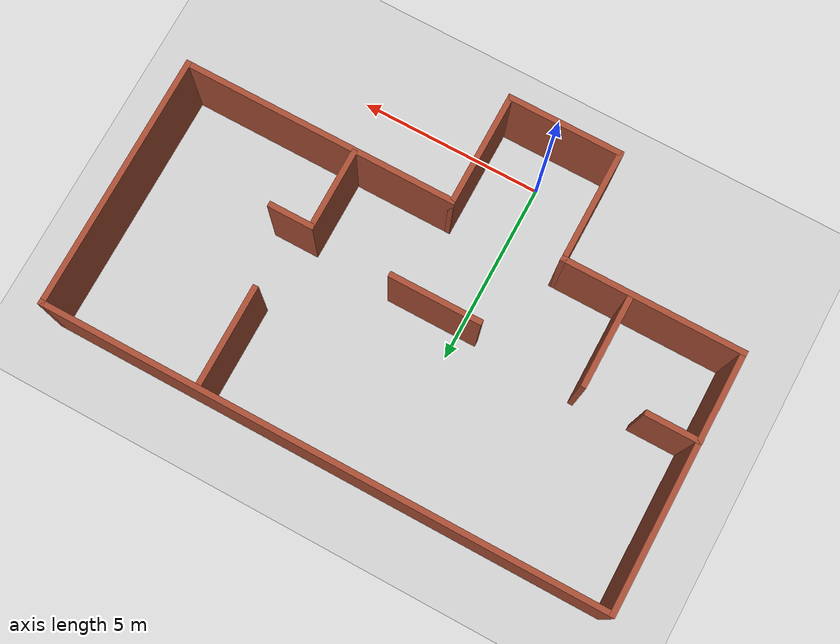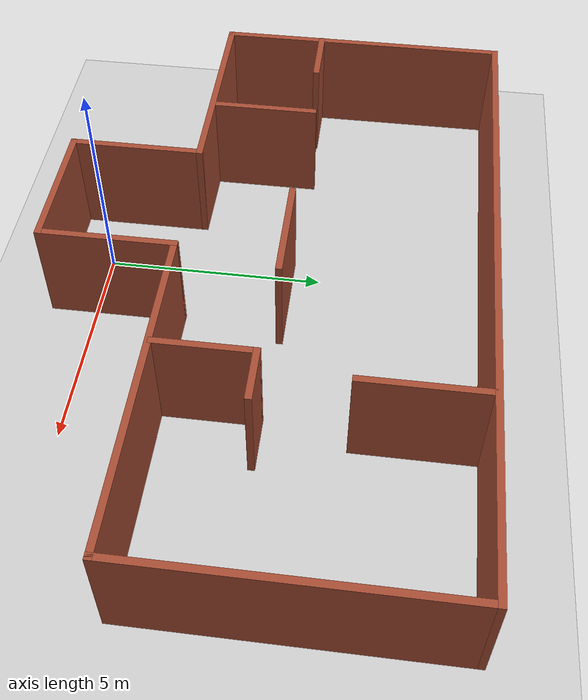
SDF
<sdf version="1.7">
 <world name="default">
  <plugin name="gazebo_ros_init" filename="libgazebo_ros_init.so">
   <ros><argument>--ros-args</argument></ros>
  </plugin>
  <plugin name="gazebo_ros_factory" filename="libgazebo_ros_factory.so"/>
  <light name="sun" type="directional">
   <pose>0 0 10 0 -0 0</pose>
   <diffuse>0.8 0.8 0.8 1</diffuse>
   <specular>0.2 0.2 0.2 1</specular>
   <attenuation>
    <range>1000</range>
    <constant>0.9</constant>
    <linear>0.01</linear>
    <quadratic>0.001</quadratic>
   </attenuation>
   <direction>-0.5 0.1 -0.9</direction>
   <spot><inner_angle>0</inner_angle><outer_angle>0</outer_angle><falloff>0</falloff></spot>
  </light>
  <model name="ground_plane">
   <static>1</static>
   <link name="link">
    <collision name="collision">
     <geometry><plane><normal>0 0 1</normal><size>100 100</size></plane></geometry>
     <surface>
      <contact><collide_bitmask>65535</collide_bitmask></contact>
      <friction><ode><mu>100</mu><mu2>50</mu2></ode></friction>
     </surface>
    </collision>
    <visual name="visual">
     <cast_shadows>0</cast_shadows>
     <geometry><plane><normal>0 0 1</normal><size>100 100</size></plane></geometry>
     <material>
      <script><uri>file://media/materials/scripts/gazebo.material</uri><name>Gazebo/Grey</name></script>
     </material>
    </visual>
   </link>
  </model>
  <gravity>0 0 -9.8</gravity>
  <magnetic_field>6e-06 2.3e-05 -4.2e-05</magnetic_field>
  <atmosphere type="adiabatic"/>
  <physics type="ode">
   <max_step_size>0.001</max_step_size>
   <real_time_factor>1</real_time_factor>
   <real_time_update_rate>1000</real_time_update_rate>
  </physics>
  <scene><ambient>0.4 0.4 0.4 1</ambient><background>0.7 0.7 0.7 1</background><shadows>1</shadows></scene>
  <audio><device>default</device></audio>
  <spherical_coordinates>
   <surface_model>EARTH_WGS84</surface_model>
   <latitude_deg>0</latitude_deg>
   <longitude_deg>0</longitude_deg>
   <elevation>0</elevation>
   <heading_deg>0</heading_deg>
  </spherical_coordinates>
  <model name="test_model">
   <pose>1.29701 3.925 0 0 -0 0</pose>
   <link name="Wall_0">
    <collision name="Wall_0_Collision">
     <geometry><box><size>3.15 0.15 2.5</size></box></geometry>
     <pose>0 0 1.25 0 -0 0</pose>
    </collision>
    <visual name="Wall_0_Visual">
     <pose>0 0 1.25 0 -0 0</pose>
     <geometry><box><size>3.15 0.15 2.5</size></box></geometry>
     <material>
      <script><uri>file://media/materials/scripts/gazebo.material</uri><name>Gazebo/Bricks</name></script>
      <ambient>1 1 1 1</ambient>
     </material>
     <meta><layer>0</layer></meta>
    </visual>
    <pose>-2.79701 -3.425 0 0 -0 1.5708</pose>
   </link>
   <link name="Wall_10">
    <collision name="Wall_10_Collision">
     <geometry><box><size>7 0.15 2.5</size></box></geometry>
     <pose>0 0 1.25 0 -0 0</pose>
    </collision>
    <visual name="Wall_10_Visual">
     <pose>0 0 1.25 0 -0 0</pose>
     <geometry><box><size>7 0.15 2.5</size></box></geometry>
     <material>
      <script><uri>file://media/materials/scripts/gazebo.material</uri><name>Gazebo/Bricks</name></script>
      <ambient>1 1 1 1</ambient>
     </material>
     <meta><layer>0</layer></meta>
    </visual>
    <pose>-7.54701 1.5 0 0 -0 -1.5708</pose>
   </link>
   <link name="Wall_11">
    <collision name="Wall_11_Collision">
     <geometry><box><size>4.9 0.15 2.5</size></box></geometry>
     <pose>0 0 1.25 0 -0 0</pose>
    </collision>
    <visual name="Wall_11_Visual">
     <pose>0 0 1.25 0 -0 0</pose>
     <geometry><box><size>4.9 0.15 2.5</size></box></geometry>
     <material>
      <script><uri>file://media/materials/scripts/gazebo.material</uri><name>Gazebo/Bricks</name></script>
      <ambient>1 1 1 1</ambient>
     </material>
     <meta><layer>0</layer></meta>
    </visual>
    <pose>-5.17201 -1.925 0 0 -0 0</pose>
   </link>
   <link name="Wall_13">
    <collision name="Wall_13_Collision">
     <geometry><box><size>0 0 0</size></box></geometry>
     <pose>0 0 1.25 0 -0 0</pose>
    </collision>
    <visual name="Wall_13_Visual">
     <pose>0 0 1.25 0 -0 0</pose>
     <geometry><box><size>0 0 0</size></box></geometry>
     <material>
      <script><uri>file://media/materials/scripts/gazebo.material</uri><name>Gazebo/Bricks</name></script>
      <ambient>1 1 1 1</ambient>
     </material>
     <meta><layer>0</layer></meta>
    </visual>
    <pose>-3.75299 3.03498 0 0 -0 0</pose>
   </link>
   <link name="Wall_15">
    <collision name="Wall_15_Collision">
     <geometry><box><size>2.75 0.15 2.5</size></box></geometry>
     <pose>0 0 1.25 0 -0 0</pose>
    </collision>
    <visual name="Wall_15_Visual">
     <pose>0 0 1.25 0 -0 0</pose>
     <geometry><box><size>2.75 0.15 2.5</size></box></geometry>
     <material>
      <script><uri>file://media/materials/scripts/gazebo.material</uri><name>Gazebo/Bricks</name></script>
      <ambient>1 1 1 1</ambient>
     </material>
     <meta><layer>0</layer></meta>
    </visual>
    <pose>3.31033 3.51885 0 0 -0 -1.5708</pose>
   </link>
   <link name="Wall_16">
    <collision name="Wall_16_Collision">
     <geometry><box><size>0 0 0</size></box></geometry>
     <pose>0 0 1.25 0 -0 0</pose>
    </collision>
    <visual name="Wall_16_Visual">
     <pose>0 0 1.25 0 -0 0</pose>
     <geometry><box><size>0 0 0</size></box></geometry>
     <material>
      <script><uri>file://media/materials/scripts/gazebo.material</uri><name>Gazebo/Bricks</name></script>
      <ambient>1 1 1 1</ambient>
     </material>
     <meta><layer>0</layer></meta>
    </visual>
    <pose>4.73532 2.21885 0 0 -0 0</pose>
   </link>
   <link name="Wall_18">
    <collision name="Wall_18_Collision">
     <geometry><box><size>2.25 0.15 2.5</size></box></geometry>
     <pose>0 0 1.25 0 -0 0</pose>
    </collision>
    <visual name="Wall_18_Visual">
     <pose>0 0 1.25 0 -0 0</pose>
     <geometry><box><size>2.25 0.15 2.5</size></box></geometry>
     <material>
      <script><uri>file://media/materials/scripts/gazebo.material</uri><name>Gazebo/Bricks</name></script>
      <ambient>1 1 1 1</ambient>
     </material>
     <meta><layer>0</layer></meta>
    </visual>
    <pose>2.87579 -0.809227 0 0 -0 1.5708</pose>
   </link>
   <link name="Wall_19">
    <collision name="Wall_19_Collision">
     <geometry><box><size>1.25 0.15 2.5</size></box></geometry>
     <pose>0 0 1.25 0 -0 0</pose>
    </collision>
    <visual name="Wall_19_Visual">
     <pose>0 0 1.25 0 -0 0</pose>
     <geometry><box><size>1.25 0.15 2.5</size></box></geometry>
     <material>
      <script><uri>file://media/materials/scripts/gazebo.material</uri><name>Gazebo/Bricks</name></script>
      <ambient>1 1 1 1</ambient>
     </material>
     <meta><layer>0</layer></meta>
    </visual>
    <pose>3.42579 0.240773 0 0 -0 0</pose>
   </link>
   <link name="Wall_2">
    <collision name="Wall_2_Collision">
     <geometry><box><size>3.15 0.15 2.5</size></box></geometry>
     <pose>0 0 1.25 0 -0 0</pose>
    </collision>
    <visual name="Wall_2_Visual">
     <pose>0 0 1.25 0 -0 0</pose>
     <geometry><box><size>3.15 0.15 2.5</size></box></geometry>
     <material>
      <script><uri>file://media/materials/scripts/gazebo.material</uri><name>Gazebo/Bricks</name></script>
      <ambient>1 1 1 1</ambient>
     </material>
     <meta><layer>0</layer></meta>
    </visual>
    <pose>0.202986 -3.425 0 0 -0 1.5708</pose>
   </link>
   <link name="Wall_21">
    <collision name="Wall_21_Collision">
     <geometry><box><size>2.5 0.15 2.5</size></box></geometry>
     <pose>0 0 1.25 0 -0 0</pose>
    </collision>
    <visual name="Wall_21_Visual">
     <pose>0 0 1.25 0 -0 0</pose>
     <geometry><box><size>2.5 0.15 2.5</size></box></geometry>
     <material>
      <script><uri>file://media/materials/scripts/gazebo.material</uri><name>Gazebo/Bricks</name></script>
      <ambient>1 1 1 1</ambient>
     </material>
     <meta><layer>0</layer></meta>
    </visual>
    <pose>-0.568974 0.382046 0 0 -0 0</pose>
   </link>
   <link name="Wall_23">
    <collision name="Wall_23_Collision">
     <geometry><box><size>1.5 0.15 2.5</size></box></geometry>
     <pose>0 0 1.25 0 -0 0</pose>
    </collision>
    <visual name="Wall_23_Visual">
     <pose>0 0 1.25 0 -0 0</pose>
     <geometry><box><size>1.5 0.15 2.5</size></box></geometry>
     <material>
      <script><uri>file://media/materials/scripts/gazebo.material</uri><name>Gazebo/Bricks</name></script>
      <ambient>1 1 1 1</ambient>
     </material>
     <meta><layer>0</layer></meta>
    </visual>
    <pose>-6.87799 0.450656 0 0 -0 0</pose>
   </link>
   <link name="Wall_25">
    <collision name="Wall_25_Collision">
     <geometry><box><size>2.5 0.15 2.5</size></box></geometry>
     <pose>0 0 1.25 0 -0 0</pose>
    </collision>
    <visual name="Wall_25_Visual">
     <pose>0 0 1.25 0 -0 0</pose>
     <geometry><box><size>2.5 0.15 2.5</size></box></geometry>
     <material>
      <script><uri>file://media/materials/scripts/gazebo.material</uri><name>Gazebo/Bricks</name></script>
      <ambient>1 1 1 1</ambient>
     </material>
     <meta><layer>0</layer></meta>
    </visual>
    <pose>-4.60274 -0.632863 0 0 -0 -1.5708</pose>
   </link>
   <link name="Wall_4">
    <collision name="Wall_4_Collision">
     <geometry><box><size>3.15 0.15 2.5</size></box></geometry>
     <pose>0 0 1.25 0 -0 0</pose>
    </collision>
    <visual name="Wall_4_Visual">
     <pose>0 0 1.25 0 -0 0</pose>
     <geometry><box><size>3.15 0.15 2.5</size></box></geometry>
     <material>
      <script><uri>file://media/materials/scripts/gazebo.material</uri><name>Gazebo/Bricks</name></script>
      <ambient>1 1 1 1</ambient>
     </material>
     <meta><layer>0</layer></meta>
    </visual>
    <pose>-1.29701 -4.925 0 0 -0 0</pose>
   </link>
   <link name="Wall_6">
    <collision name="Wall_6_Collision">
     <geometry><box><size>7.5 0.15 2.5</size></box></geometry>
     <pose>0 0 1.25 0 -0 0</pose>
    </collision>
    <visual name="Wall_6_Visual">
     <pose>0 0 1.25 0 -0 0</pose>
     <geometry><box><size>7.5 0.15 2.5</size></box></geometry>
     <material>
      <script><uri>file://media/materials/scripts/gazebo.material</uri><name>Gazebo/Bricks</name></script>
      <ambient>1 1 1 1</ambient>
     </material>
     <meta><layer>0</layer></meta>
    </visual>
    <pose>3.87799 -1.925 0 0 -0 0</pose>
   </link>
   <link name="Wall_7">
    <collision name="Wall_7_Collision">
     <geometry><box><size>7 0.15 2.5</size></box></geometry>
     <pose>0 0 1.25 0 -0 0</pose>
    </collision>
    <visual name="Wall_7_Visual">
     <pose>0 0 1.25 0 -0 0</pose>
     <geometry><box><size>7 0.15 2.5</size></box></geometry>
     <material>
      <script><uri>file://media/materials/scripts/gazebo.material</uri><name>Gazebo/Bricks</name></script>
      <ambient>1 1 1 1</ambient>
     </material>
     <meta><layer>0</layer></meta>
    </visual>
    <pose>7.55299 1.5 0 0 -0 1.5708</pose>
   </link>
   <link name="Wall_9">
    <collision name="Wall_9_Collision">
     <geometry><box><size>15.25 0.15 2.5</size></box></geometry>
     <pose>0 0 1.25 0 -0 0</pose>
    </collision>
    <visual name="Wall_9_Visual">
     <pose>0 0 1.25 0 -0 0</pose>
     <geometry><box><size>15.25 0.15 2.5</size></box></geometry>
     <material>
      <script><uri>file://media/materials/scripts/gazebo.material</uri><name>Gazebo/Bricks</name></script>
      <ambient>1 1 1 1</ambient>
     </material>
     <meta><layer>0</layer></meta>
    </visual>
    <pose>0.002986 4.925 0 0 -0 3.14159</pose>
   </link>
   <static>1</static>
  </model>
 </world>
</sdf>
